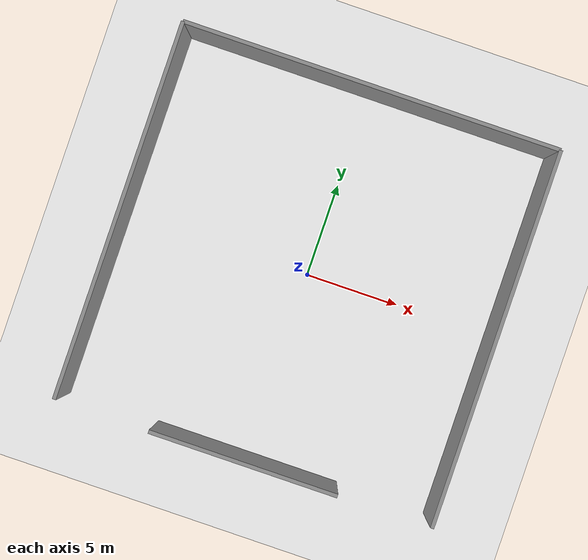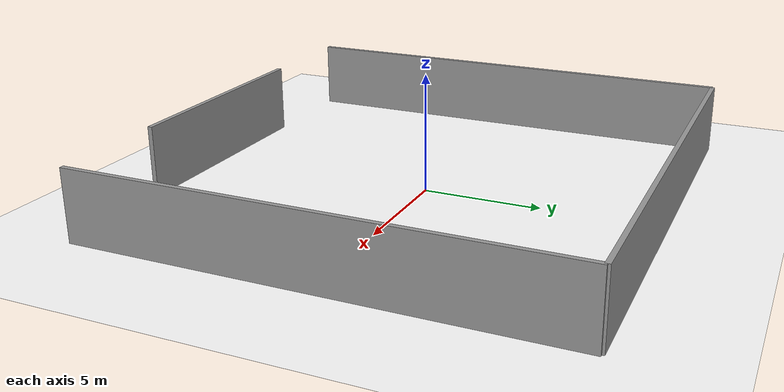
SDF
<?xml version="1.0" ?>
<sdf version='1.8'>
  <world name='simple_room'>

    <!--
      see https://staging.gazebosim.org/docs/harmonic/sensors
      and https://github.com/gazebosim/docs/blob/master/harmonic/tutorials/sensors/sensor_tutorial.sdf
     -->
    <physics name="1ms" type="ignored">
        <max_step_size>0.001</max_step_size>
        <real_time_factor>1.0</real_time_factor>
    </physics>
    <plugin
        filename="gz-sim-physics-system"
        name="gz::sim::systems::Physics">
    </plugin>
    <plugin
        filename="gz-sim-user-commands-system"
        name="gz::sim::systems::UserCommands">
    </plugin>
    <plugin
        filename="gz-sim-scene-broadcaster-system"
        name="gz::sim::systems::SceneBroadcaster">
    </plugin>
    <plugin
        filename="gz-sim-imu-system"
        name="gz::sim::systems::Imu">
    </plugin>
    <plugin
        filename="gz-sim-sensors-system"
        name="gz::sim::systems::Sensors">
        <render_engine>ogre2</render_engine>
    </plugin>
    <plugin
        filename="gz-sim-contact-system"
        name="gz::sim::systems::Contact">
    </plugin>

    <gui fullscreen='0'>
      <camera_pose>-6 0 6 0 0.5 0</camera_pose>
    </gui>

    <light type="directional" name="sun">
        <cast_shadows>true</cast_shadows>
        <pose>0 0 10 0 0 0</pose>
        <diffuse>0.8 0.8 0.8 1</diffuse>
        <specular>0.2 0.2 0.2 1</specular>
        <attenuation>
            <range>1000</range>
            <constant>0.9</constant>
            <linear>0.01</linear>
            <quadratic>0.001</quadratic>
        </attenuation>
        <direction>-0.5 0.1 -0.9</direction>
    </light>

    <model name="ground">
      <static>true</static>
      <link name="ground_link">
        <collision name="collision1">
          <geometry>
            <plane>
              <normal>0 0 1</normal>
            </plane>
          </geometry>
        </collision>
        <visual name="visual1">
          <material>
            <ambient>1.0 1.0 1.0 1</ambient>
            <diffuse>1.0 1.0 1.0 1</diffuse>
            <specular>0.2 0.2 0.2 1</specular>
            <emissive>0 0 0 1</emissive>
          </material>

          <geometry>
            <plane>
              <normal>0 0 1</normal>
              <size>100 100</size>
            </plane>
          </geometry>
        </visual>
      </link>
    </model>

    <include>
      <uri>model://simple_room</uri>
      <pose>0 0 0 0 0 0</pose>
    </include>

  </world>
</sdf>

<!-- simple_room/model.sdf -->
<sdf version='1.7'>
  <model name='Simple Room'>
    <pose>0 0 0 0 0 0</pose>

    <link name='Wall_1'>
      <collision name='Wall_1_Collision'>
        <geometry>
          <box>
            <size>0.2 20 3</size>
          </box>
        </geometry>
        <pose>0 0 0 0 0 0</pose>
      </collision>
      <visual name='Wall_1_Visual'>
        <geometry>
          <box>
            <size>0.2 20 3</size>
          </box>
        </geometry>
        <pose>0 0 0 0 0 0</pose>
        <material>
          <script>
            <uri>file://media/materials/scripts/gazebo.material</uri>
            <name>Gazebo/Grey</name>
          </script>
          <ambient>1 1 1 1</ambient>
        </material>
        <meta>
          <layer>0</layer>
        </meta>
      </visual>
      <pose>-10 0 1.5 0 0 0</pose>
    </link>

    <link name='Wall_2'>
      <collision name='Wall_2_Collision'>
        <geometry>
          <box>
            <size>0.2 20 3</size>
          </box>
        </geometry>
        <pose>0 0 0 0 0 0</pose>
      </collision>
      <visual name='Wall_2_Visual'>
        <geometry>
          <box>
            <size>0.2 20 3</size>
          </box>
        </geometry>
        <pose>0 0 0 0 0 0</pose>
        <material>
          <script>
            <uri>file://media/materials/scripts/gazebo.material</uri>
            <name>Gazebo/Grey</name>
          </script>
          <ambient>1 1 1 1</ambient>
        </material>
        <meta>
          <layer>0</layer>
        </meta>
      </visual>
      <pose>10 0 1.5 0.0 0.0 0.0</pose>
    </link>

    <link name='Wall_3'>
      <collision name='Wall_3_Collision'>
        <geometry>
          <box>
            <size>0.2 20 3</size>
          </box>
        </geometry>
        <pose>0 0 0 0 0 0</pose>
      </collision>
      <visual name='Wall_3_Visual'>
        <geometry>
          <box>
            <size>0.2 20 3</size>
          </box>
        </geometry>
        <pose>0 0 0 0 0 0</pose>
        <material>
          <script>
            <uri>file://media/materials/scripts/gazebo.material</uri>
            <name>Gazebo/Grey</name>
          </script>
          <ambient>1 1 1 1</ambient>
        </material>
        <meta>
          <layer>0</layer>
        </meta>
      </visual>
      <pose>0 10 1.5 0.0 0.0 1.570494235572534</pose>
    </link>

    <link name='Wall_4'>
      <collision name='Wall_4_Collision'>
        <geometry>
          <box>
            <size>0.2 10 3</size>
          </box>
        </geometry>
        <pose>0 0 0 0 0 0</pose>
      </collision>
      <visual name='Wall_4_Visual'>
        <geometry>
          <box>
            <size>0.2 10 3</size>
          </box>
        </geometry>
        <pose>0 0 0 0 0 0</pose>
        <material>
          <script>
            <uri>file://media/materials/scripts/gazebo.material</uri>
            <name>Gazebo/Grey</name>
          </script>
          <ambient>1 1 1 1</ambient>
        </material>
        <meta>
          <layer>0</layer>
        </meta>
      </visual>
      <pose>0 -10 1.5 0.0 0.0 1.570494235572534</pose>
    </link>

    <static>1</static>
  </model>
</sdf>
